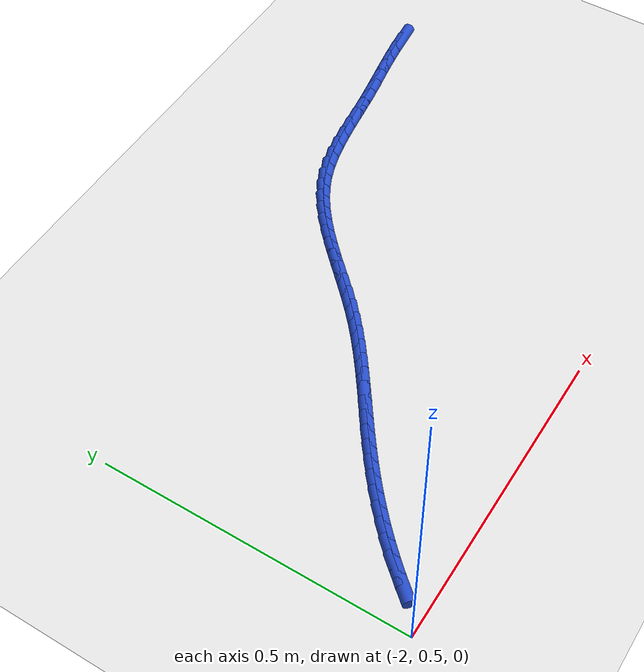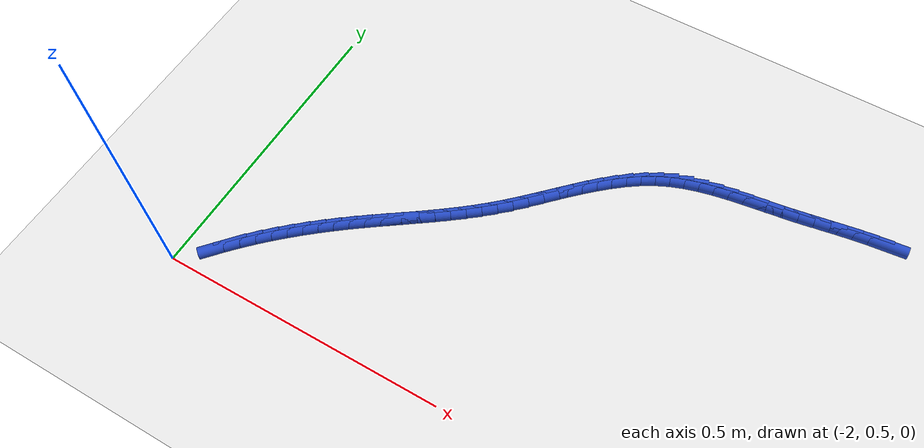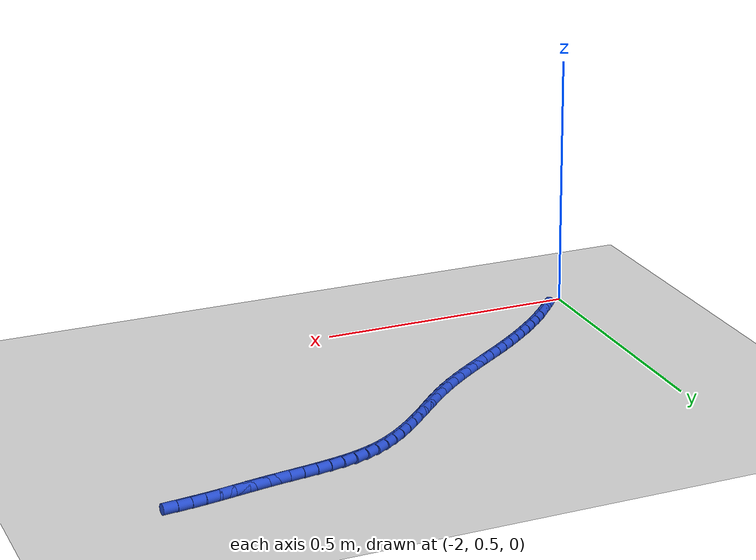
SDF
<sdf version="1.6">
 <world name="default">
  <model name="ground_plane">
   <static>1</static>
   <link name="link">
    <collision name="collision">
     <geometry><plane><normal>0 0 1</normal><size>100 100</size></plane></geometry>
     <surface><friction><ode><mu>100</mu><mu2>50</mu2></ode></friction></surface>
    </collision>
    <visual name="visual">
     <cast_shadows>0</cast_shadows>
     <geometry><plane><normal>0 0 1</normal><size>100 100</size></plane></geometry>
     <material>
      <script><uri>file://media/materials/scripts/gazebo.material</uri><name>Gazebo/WhiteGlow</name></script>
     </material>
    </visual>
   </link>
  </model>
  <model name="line">
   <link name="link_64">
    <pose>-1.021838323995918 1.0870488861961138 0.01 0 1.57 0.10696452530332518</pose>
    <collision name="collision">
     <geometry><cylinder><radius>0.01</radius><length>0.08</length></cylinder></geometry>
    </collision>
    <visual name="visual">
     <material>
      <script><name>Gazebo/Blue</name><uri>file://media/materials/scripts/gazebo.material</uri></script>
     </material>
     <geometry><cylinder><radius>0.01</radius><length>0.08</length></cylinder></geometry>
    </visual>
   </link>
   <link name="link_65">
    <pose>-1.0470163220237536 1.0843454152095848 0.01 0 1.57 0.13607970382046422</pose>
    <collision name="collision">
     <geometry><cylinder><radius>0.01</radius><length>0.08</length></cylinder></geometry>
    </collision>
    <visual name="visual">
     <material>
      <script><name>Gazebo/Blue</name><uri>file://media/materials/scripts/gazebo.material</uri></script>
     </material>
     <geometry><cylinder><radius>0.01</radius><length>0.08</length></cylinder></geometry>
    </visual>
   </link>
   <link name="link_66">
    <pose>-1.0723413260221488 1.0808777654125654 0.01 0 1.57 0.15566545825354128</pose>
    <collision name="collision">
     <geometry><cylinder><radius>0.01</radius><length>0.08</length></cylinder></geometry>
    </collision>
    <visual name="visual">
     <material>
      <script><name>Gazebo/Blue</name><uri>file://media/materials/scripts/gazebo.material</uri></script>
     </material>
     <geometry><cylinder><radius>0.01</radius><length>0.08</length></cylinder></geometry>
    </visual>
   </link>
   <link name="link_67">
    <pose>-1.0978054508704527 1.076881550074054 0.01 0 1.57 0.1660332832334869</pose>
    <collision name="collision">
     <geometry><cylinder><radius>0.01</radius><length>0.08</length></cylinder></geometry>
    </collision>
    <visual name="visual">
     <material>
      <script><name>Gazebo/Blue</name><uri>file://media/materials/scripts/gazebo.material</uri></script>
     </material>
     <geometry><cylinder><radius>0.01</radius><length>0.08</length></cylinder></geometry>
    </visual>
   </link>
   <link name="link_68">
    <pose>-1.1234008114480145 1.072592382463049 0.01 0 1.57 0.16741976443266116</pose>
    <collision name="collision">
     <geometry><cylinder><radius>0.01</radius><length>0.08</length></cylinder></geometry>
    </collision>
    <visual name="visual">
     <material>
      <script><name>Gazebo/Blue</name><uri>file://media/materials/scripts/gazebo.material</uri></script>
     </material>
     <geometry><cylinder><radius>0.01</radius><length>0.08</length></cylinder></geometry>
    </visual>
   </link>
   <link name="link_69">
    <pose>-1.1491195226341842 1.06824587584855 0.01 0 1.57 0.15996705940471143</pose>
    <collision name="collision">
     <geometry><cylinder><radius>0.01</radius><length>0.08</length></cylinder></geometry>
    </collision>
    <visual name="visual">
     <material>
      <script><name>Gazebo/Blue</name><uri>file://media/materials/scripts/gazebo.material</uri></script>
     </material>
     <geometry><cylinder><radius>0.01</radius><length>0.08</length></cylinder></geometry>
    </visual>
   </link>
   <link name="link_70">
    <pose>-1.1749536993083116 1.0640776434995542 0.01 0 1.57 0.14477655010999727</pose>
    <collision name="collision">
     <geometry><cylinder><radius>0.01</radius><length>0.08</length></cylinder></geometry>
    </collision>
    <visual name="visual">
     <material>
      <script><name>Gazebo/Blue</name><uri>file://media/materials/scripts/gazebo.material</uri></script>
     </material>
     <geometry><cylinder><radius>0.01</radius><length>0.08</length></cylinder></geometry>
    </visual>
   </link>
   <link name="link_71">
    <pose>-1.2008889509218494 1.0602963714527576 0.01 0 1.57 0.1342856530380723</pose>
    <collision name="collision">
     <geometry><cylinder><radius>0.01</radius><length>0.08</length></cylinder></geometry>
    </collision>
    <visual name="visual">
     <material>
      <script><name>Gazebo/Blue</name><uri>file://media/materials/scripts/gazebo.material</uri></script>
     </material>
     <geometry><cylinder><radius>0.01</radius><length>0.08</length></cylinder></geometry>
    </visual>
   </link>
   <link name="link_72">
    <pose>-1.226833703680876 1.056791269269033 0.01 0 1.57 0.13663447258557715</pose>
    <collision name="collision">
     <geometry><cylinder><radius>0.01</radius><length>0.08</length></cylinder></geometry>
    </collision>
    <visual name="visual">
     <material>
      <script><name>Gazebo/Blue</name><uri>file://media/materials/scripts/gazebo.material</uri></script>
     </material>
     <geometry><cylinder><radius>0.01</radius><length>0.08</length></cylinder></geometry>
    </visual>
   </link>
   <link name="link_73">
    <pose>-1.2526458383988395 1.0532423292908184 0.01 0 1.57 0.15217949498837913</pose>
    <collision name="collision">
     <geometry><cylinder><radius>0.01</radius><length>0.08</length></cylinder></geometry>
    </collision>
    <visual name="visual">
     <material>
      <script><name>Gazebo/Blue</name><uri>file://media/materials/scripts/gazebo.material</uri></script>
     </material>
     <geometry><cylinder><radius>0.01</radius><length>0.08</length></cylinder></geometry>
    </visual>
   </link>
   <link name="link_74">
    <pose>-1.2781823591318762 1.0493259147913858 0.01 0 1.57 0.18141897212784483</pose>
    <collision name="collision">
     <geometry><cylinder><radius>0.01</radius><length>0.08</length></cylinder></geometry>
    </collision>
    <visual name="visual">
     <material>
      <script><name>Gazebo/Blue</name><uri>file://media/materials/scripts/gazebo.material</uri></script>
     </material>
     <geometry><cylinder><radius>0.01</radius><length>0.08</length></cylinder></geometry>
    </visual>
   </link>
   <link name="link_75">
    <pose>-1.3033002699361227 1.0447183890440086 0.01 0 1.57 0.2250750815314255</pose>
    <collision name="collision">
     <geometry><cylinder><radius>0.01</radius><length>0.08</length></cylinder></geometry>
    </collision>
    <visual name="visual">
     <material>
      <script><name>Gazebo/Blue</name><uri>file://media/materials/scripts/gazebo.material</uri></script>
     </material>
     <geometry><cylinder><radius>0.01</radius><length>0.08</length></cylinder></geometry>
    </visual>
   </link>
   <link name="link_76">
    <pose>-1.327856574867715 1.0390961153219587 0.01 0 1.57 0.28394524503124924</pose>
    <collision name="collision">
     <geometry><cylinder><radius>0.01</radius><length>0.08</length></cylinder></geometry>
    </collision>
    <visual name="visual">
     <material>
      <script><name>Gazebo/Blue</name><uri>file://media/materials/scripts/gazebo.material</uri></script>
     </material>
     <geometry><cylinder><radius>0.01</radius><length>0.08</length></cylinder></geometry>
    </visual>
   </link>
   <link name="link_77">
    <pose>-1.3517082779827896 1.032135456898509 0.01 0 1.57 0.358623566309431</pose>
    <collision name="collision">
     <geometry><cylinder><radius>0.01</radius><length>0.08</length></cylinder></geometry>
    </collision>
    <visual name="visual">
     <material>
      <script><name>Gazebo/Blue</name><uri>file://media/materials/scripts/gazebo.material</uri></script>
     </material>
     <geometry><cylinder><radius>0.01</radius><length>0.08</length></cylinder></geometry>
    </visual>
   </link>
   <link name="link_78">
    <pose>-1.3747123833374835 1.0235127770469326 0.01 0 1.57 0.44777555967327</pose>
    <collision name="collision">
     <geometry><cylinder><radius>0.01</radius><length>0.08</length></cylinder></geometry>
    </collision>
    <visual name="visual">
     <material>
      <script><name>Gazebo/Blue</name><uri>file://media/materials/scripts/gazebo.material</uri></script>
     </material>
     <geometry><cylinder><radius>0.01</radius><length>0.08</length></cylinder></geometry>
    </visual>
   </link>
   <link name="link_79">
    <pose>-1.3967395407412524 1.012932813736701 0.01 0 1.57 0.5351571665505088</pose>
    <collision name="collision">
     <geometry><cylinder><radius>0.01</radius><length>0.08</length></cylinder></geometry>
    </collision>
    <visual name="visual">
     <material>
      <script><name>Gazebo/Blue</name><uri>file://media/materials/scripts/gazebo.material</uri></script>
     </material>
     <geometry><cylinder><radius>0.01</radius><length>0.08</length></cylinder></geometry>
    </visual>
   </link>
   <link name="link_80">
    <pose>-1.4178210324414733 1.000434320694365 0.01 0 1.57 0.6097517194103494</pose>
    <collision name="collision">
     <geometry><cylinder><radius>0.01</radius><length>0.08</length></cylinder></geometry>
    </collision>
    <visual name="visual">
     <material>
      <script><name>Gazebo/Blue</name><uri>file://media/materials/scripts/gazebo.material</uri></script>
     </material>
     <geometry><cylinder><radius>0.01</radius><length>0.08</length></cylinder></geometry>
    </visual>
   </link>
   <link name="link_81">
    <pose>-1.4380927324354231 0.9862735375601418 0.01 0 1.57 0.6711048671441473</pose>
    <collision name="collision">
     <geometry><cylinder><radius>0.01</radius><length>0.08</length></cylinder></geometry>
    </collision>
    <visual name="visual">
     <material>
      <script><name>Gazebo/Blue</name><uri>file://media/materials/scripts/gazebo.material</uri></script>
     </material>
     <geometry><cylinder><radius>0.01</radius><length>0.08</length></cylinder></geometry>
    </visual>
   </link>
   <link name="link_82">
    <pose>-1.457692301462862 0.9707104192894803 0.01 0 1.57 0.7195287915803439</pose>
    <collision name="collision">
     <geometry><cylinder><radius>0.01</radius><length>0.08</length></cylinder></geometry>
    </collision>
    <visual name="visual">
     <material>
      <script><name>Gazebo/Blue</name><uri>file://media/materials/scripts/gazebo.material</uri></script>
     </material>
     <geometry><cylinder><radius>0.01</radius><length>0.08</length></cylinder></geometry>
    </visual>
   </link>
   <link name="link_83">
    <pose>-1.476757400263548 0.9540049208378285 0.01 0 1.57 0.7556088954026524</pose>
    <collision name="collision">
     <geometry><cylinder><radius>0.01</radius><length>0.08</length></cylinder></geometry>
    </collision>
    <visual name="visual">
     <material>
      <script><name>Gazebo/Blue</name><uri>file://media/materials/scripts/gazebo.material</uri></script>
     </material>
     <geometry><cylinder><radius>0.01</radius><length>0.08</length></cylinder></geometry>
    </visual>
   </link>
   <link name="link_84">
    <pose>-1.4954256895772404 0.9364169971606363 0.01 0 1.57 0.7799708779220451</pose>
    <collision name="collision">
     <geometry><cylinder><radius>0.01</radius><length>0.08</length></cylinder></geometry>
    </collision>
    <visual name="visual">
     <material>
      <script><name>Gazebo/Blue</name><uri>file://media/materials/scripts/gazebo.material</uri></script>
     </material>
     <geometry><cylinder><radius>0.01</radius><length>0.08</length></cylinder></geometry>
    </visual>
   </link>
   <link name="link_85">
    <pose>-1.5138348301436997 0.9182066032133522 0.01 0 1.57 0.7931368139894777</pose>
    <collision name="collision">
     <geometry><cylinder><radius>0.01</radius><length>0.08</length></cylinder></geometry>
    </collision>
    <visual name="visual">
     <material>
      <script><name>Gazebo/Blue</name><uri>file://media/materials/scripts/gazebo.material</uri></script>
     </material>
     <geometry><cylinder><radius>0.01</radius><length>0.08</length></cylinder></geometry>
    </visual>
   </link>
   <link name="link_86">
    <pose>-1.5321224827026845 0.8996336939514247 0.01 0 1.57 0.7954478903864148</pose>
    <collision name="collision">
     <geometry><cylinder><radius>0.01</radius><length>0.08</length></cylinder></geometry>
    </collision>
    <visual name="visual">
     <material>
      <script><name>Gazebo/Blue</name><uri>file://media/materials/scripts/gazebo.material</uri></script>
     </material>
     <geometry><cylinder><radius>0.01</radius><length>0.08</length></cylinder></geometry>
    </visual>
   </link>
   <link name="link_87">
    <pose>-1.5504263079939526 0.8809582243303026 0.01 0 1.57 0.7870321054886239</pose>
    <collision name="collision">
     <geometry><cylinder><radius>0.01</radius><length>0.08</length></cylinder></geometry>
    </collision>
    <visual name="visual">
     <material>
      <script><name>Gazebo/Blue</name><uri>file://media/materials/scripts/gazebo.material</uri></script>
     </material>
     <geometry><cylinder><radius>0.01</radius><length>0.08</length></cylinder></geometry>
    </visual>
   </link>
   <link name="link_88">
    <pose>-1.5688839667572656 0.8624401493054352 0.01 0 1.57 0.767803516785422</pose>
    <collision name="collision">
     <geometry><cylinder><radius>0.01</radius><length>0.08</length></cylinder></geometry>
    </collision>
    <visual name="visual">
     <material>
      <script><name>Gazebo/Blue</name><uri>file://media/materials/scripts/gazebo.material</uri></script>
     </material>
     <geometry><cylinder><radius>0.01</radius><length>0.08</length></cylinder></geometry>
    </visual>
   </link>
   <link name="link_89">
    <pose>-1.5876331197323816 0.8443394238322712 0.01 0 1.57 0.7377370743462207</pose>
    <collision name="collision">
     <geometry><cylinder><radius>0.01</radius><length>0.08</length></cylinder></geometry>
    </collision>
    <visual name="visual">
     <material>
      <script><name>Gazebo/Blue</name><uri>file://media/materials/scripts/gazebo.material</uri></script>
     </material>
     <geometry><cylinder><radius>0.01</radius><length>0.08</length></cylinder></geometry>
    </visual>
   </link>
   <link name="link_90">
    <pose>-1.6068080614136666 0.8269103896917106 0.01 0 1.57 0.7040088856966238</pose>
    <collision name="collision">
     <geometry><cylinder><radius>0.01</radius><length>0.08</length></cylinder></geometry>
    </collision>
    <visual name="visual">
     <material>
      <script><name>Gazebo/Blue</name><uri>file://media/materials/scripts/gazebo.material</uri></script>
     </material>
     <geometry><cylinder><radius>0.01</radius><length>0.08</length></cylinder></geometry>
    </visual>
   </link>
   <link name="link_91">
    <pose>-1.6264416484016866 0.8102382421714032 0.01 0 1.57 0.6753027912023021</pose>
    <collision name="collision">
     <geometry><cylinder><radius>0.01</radius><length>0.08</length></cylinder></geometry>
    </collision>
    <visual name="visual">
     <material>
      <script><name>Gazebo/Blue</name><uri>file://media/materials/scripts/gazebo.material</uri></script>
     </material>
     <geometry><cylinder><radius>0.01</radius><length>0.08</length></cylinder></geometry>
    </visual>
   </link>
   <link name="link_92">
    <pose>-1.6464498370478653 0.7942132467703215 0.01 0 1.57 0.6522481722490289</pose>
    <collision name="collision">
     <geometry><cylinder><radius>0.01</radius><length>0.08</length></cylinder></geometry>
    </collision>
    <visual name="visual">
     <material>
      <script><name>Gazebo/Blue</name><uri>file://media/materials/scripts/gazebo.material</uri></script>
     </material>
     <geometry><cylinder><radius>0.01</radius><length>0.08</length></cylinder></geometry>
    </visual>
   </link>
   <link name="link_93">
    <pose>-1.6667421054612357 0.7787148665945447 0.01 0 1.57 0.6349470831260414</pose>
    <collision name="collision">
     <geometry><cylinder><radius>0.01</radius><length>0.08</length></cylinder></geometry>
    </collision>
    <visual name="visual">
     <material>
      <script><name>Gazebo/Blue</name><uri>file://media/materials/scripts/gazebo.material</uri></script>
     </material>
     <geometry><cylinder><radius>0.01</radius><length>0.08</length></cylinder></geometry>
    </visual>
   </link>
   <link name="link_94">
    <pose>-1.6872279317508303 0.7636225647501513 0.01 0 1.57 0.6234719944765789</pose>
    <collision name="collision">
     <geometry><cylinder><radius>0.01</radius><length>0.08</length></cylinder></geometry>
    </collision>
    <visual name="visual">
     <material>
      <script><name>Gazebo/Blue</name><uri>file://media/materials/scripts/gazebo.material</uri></script>
     </material>
     <geometry><cylinder><radius>0.01</radius><length>0.08</length></cylinder></geometry>
    </visual>
   </link>
   <link name="link_95">
    <pose>-1.7078167940256792 0.74881580434322 0.01 0 1.57 0.6178826678654469</pose>
    <collision name="collision">
     <geometry><cylinder><radius>0.01</radius><length>0.08</length></cylinder></geometry>
    </collision>
    <visual name="visual">
     <material>
      <script><name>Gazebo/Blue</name><uri>file://media/materials/scripts/gazebo.material</uri></script>
     </material>
     <geometry><cylinder><radius>0.01</radius><length>0.08</length></cylinder></geometry>
    </visual>
   </link>
   <link name="link_96">
    <pose>-1.728418170394816 0.7341740484798301 0.01 0 1.57 0.6182378324605511</pose>
    <collision name="collision">
     <geometry><cylinder><radius>0.01</radius><length>0.08</length></cylinder></geometry>
    </collision>
    <visual name="visual">
     <material>
      <script><name>Gazebo/Blue</name><uri>file://media/materials/scripts/gazebo.material</uri></script>
     </material>
     <geometry><cylinder><radius>0.01</radius><length>0.08</length></cylinder></geometry>
    </visual>
   </link>
   <link name="link_97">
    <pose>-1.7489415389672722 0.71957676026606 0.01 0 1.57 0.6246011143520673</pose>
    <collision name="collision">
     <geometry><cylinder><radius>0.01</radius><length>0.08</length></cylinder></geometry>
    </collision>
    <visual name="visual">
     <material>
      <script><name>Gazebo/Blue</name><uri>file://media/materials/scripts/gazebo.material</uri></script>
     </material>
     <geometry><cylinder><radius>0.01</radius><length>0.08</length></cylinder></geometry>
    </visual>
   </link>
   <link name="link_98">
    <pose>-1.7692963778520803 0.7049034028079887 0.01 0 1.57 0.6370335928230344</pose>
    <collision name="collision">
     <geometry><cylinder><radius>0.01</radius><length>0.08</length></cylinder></geometry>
    </collision>
    <visual name="visual">
     <material>
      <script><name>Gazebo/Blue</name><uri>file://media/materials/scripts/gazebo.material</uri></script>
     </material>
     <geometry><cylinder><radius>0.01</radius><length>0.08</length></cylinder></geometry>
    </visual>
   </link>
   <link name="link_99">
    <pose>-1.7893923395950186 0.6900335336095836 0.01 0 1.57 0.6543945144245652</pose>
    <collision name="collision">
     <geometry><cylinder><radius>0.01</radius><length>0.08</length></cylinder></geometry>
    </collision>
    <visual name="visual">
     <material>
      <script><name>Gazebo/Blue</name><uri>file://media/materials/scripts/gazebo.material</uri></script>
     </material>
     <geometry><cylinder><radius>0.01</radius><length>0.08</length></cylinder></geometry>
    </visual>
   </link>
   <link name="link_100">
    <pose>-1.8091680301030444 0.6748623785258425 0.01 0 1.57 0.6741178131002009</pose>
    <collision name="collision">
     <geometry><cylinder><radius>0.01</radius><length>0.08</length></cylinder></geometry>
    </collision>
    <visual name="visual">
     <material>
      <script><name>Gazebo/Blue</name><uri>file://media/materials/scripts/gazebo.material</uri></script>
     </material>
     <geometry><cylinder><radius>0.01</radius><length>0.08</length></cylinder></geometry>
    </visual>
   </link>
   <link name="link_101">
    <pose>-1.8286230971592474 0.659318196728233 0.01 0 1.57 0.6957622814228336</pose>
    <collision name="collision">
     <geometry><cylinder><radius>0.01</radius><length>0.08</length></cylinder></geometry>
    </collision>
    <visual name="visual">
     <material>
      <script><name>Gazebo/Blue</name><uri>file://media/materials/scripts/gazebo.material</uri></script>
     </material>
     <geometry><cylinder><radius>0.01</radius><length>0.08</length></cylinder></geometry>
    </visual>
   </link>
   <link name="link_102">
    <pose>-1.847764923363589 0.6433334331483882 0.01 0 1.57 0.7191735347683125</pose>
    <collision name="collision">
     <geometry><cylinder><radius>0.01</radius><length>0.08</length></cylinder></geometry>
    </collision>
    <visual name="visual">
     <material>
      <script><name>Gazebo/Blue</name><uri>file://media/materials/scripts/gazebo.material</uri></script>
     </material>
     <geometry><cylinder><radius>0.01</radius><length>0.08</length></cylinder></geometry>
    </visual>
   </link>
   <link name="link_103">
    <pose>-1.8666008913160295 0.6268405327179422 0.01 0 1.57 0.7441673595973329</pose>
    <collision name="collision">
     <geometry><cylinder><radius>0.01</radius><length>0.08</length></cylinder></geometry>
    </collision>
    <visual name="visual">
     <material>
      <script><name>Gazebo/Blue</name><uri>file://media/materials/scripts/gazebo.material</uri></script>
     </material>
     <geometry><cylinder><radius>0.01</radius><length>0.08</length></cylinder></geometry>
    </visual>
   </link>
   <link name="link_104">
    <pose>-1.8851383836165296 0.6097719403685277 0.01 0 1.57 0.7705331266647806</pose>
    <collision name="collision">
     <geometry><cylinder><radius>0.01</radius><length>0.08</length></cylinder></geometry>
    </collision>
    <visual name="visual">
     <material>
      <script><name>Gazebo/Blue</name><uri>file://media/materials/scripts/gazebo.material</uri></script>
     </material>
     <geometry><cylinder><radius>0.01</radius><length>0.08</length></cylinder></geometry>
    </visual>
   </link>
   <link name="link_105">
    <pose>-1.9033847828650503 0.5920601010317786 0.01 0 1.57 0.7980386450407678</pose>
    <collision name="collision">
     <geometry><cylinder><radius>0.01</radius><length>0.08</length></cylinder></geometry>
    </collision>
    <visual name="visual">
     <material>
      <script><name>Gazebo/Blue</name><uri>file://media/materials/scripts/gazebo.material</uri></script>
     </material>
     <geometry><cylinder><radius>0.01</radius><length>0.08</length></cylinder></geometry>
    </visual>
   </link>
   <link name="link_106">
    <pose>-1.9213474716615526 0.5736374596393282 0.01 0 1.57 0.8264362647595881</pose>
    <collision name="collision">
     <geometry><cylinder><radius>0.01</radius><length>0.08</length></cylinder></geometry>
    </collision>
    <visual name="visual">
     <material>
      <script><name>Gazebo/Blue</name><uri>file://media/materials/scripts/gazebo.material</uri></script>
     </material>
     <geometry><cylinder><radius>0.01</radius><length>0.08</length></cylinder></geometry>
    </visual>
   </link>
   <link name="link_107">
    <pose>-1.9390338326059975 0.5544364611228096 0.01 0 1.57 0.8554698879338617</pose>
    <collision name="collision">
     <geometry><cylinder><radius>0.01</radius><length>0.08</length></cylinder></geometry>
    </collision>
    <visual name="visual">
     <material>
      <script><name>Gazebo/Blue</name><uri>file://media/materials/scripts/gazebo.material</uri></script>
     </material>
     <geometry><cylinder><radius>0.01</radius><length>0.08</length></cylinder></geometry>
    </visual>
   </link>
  </model>
 </world>
</sdf>
